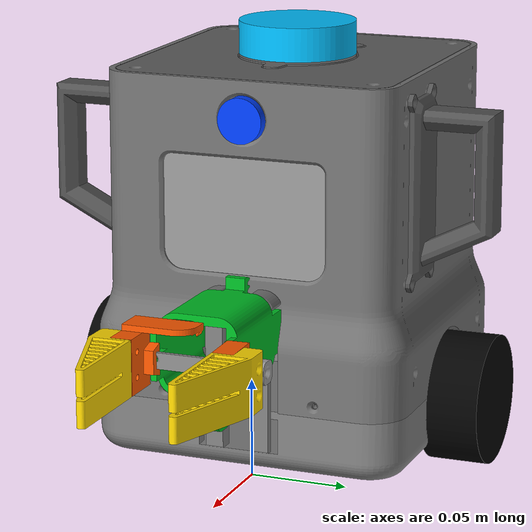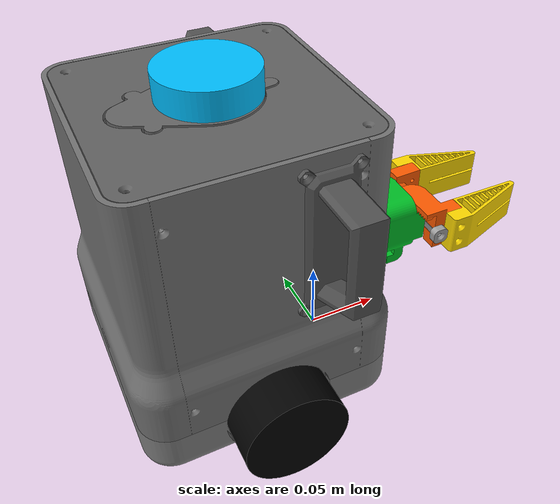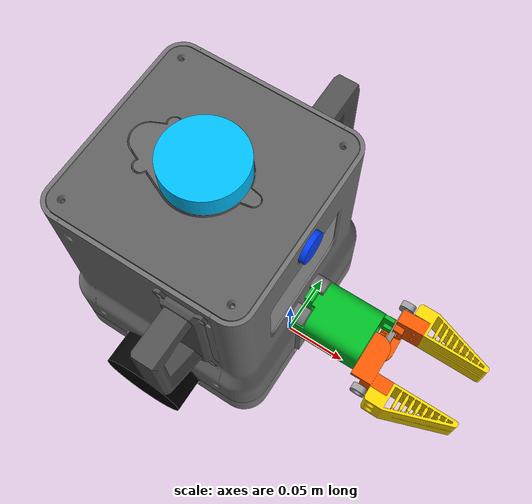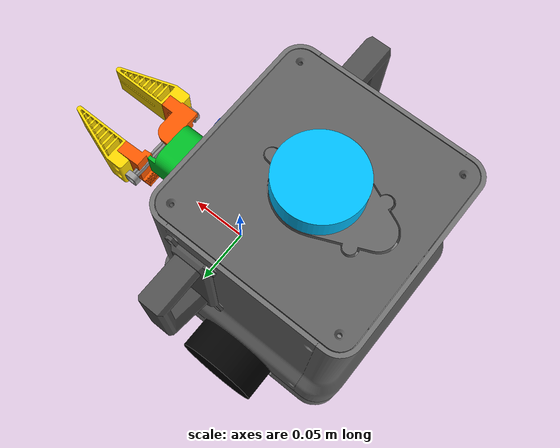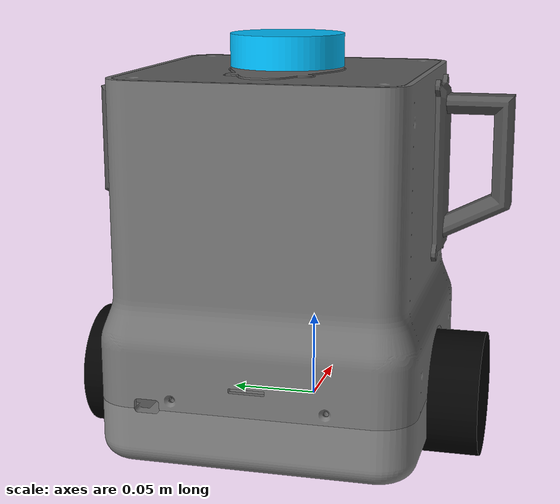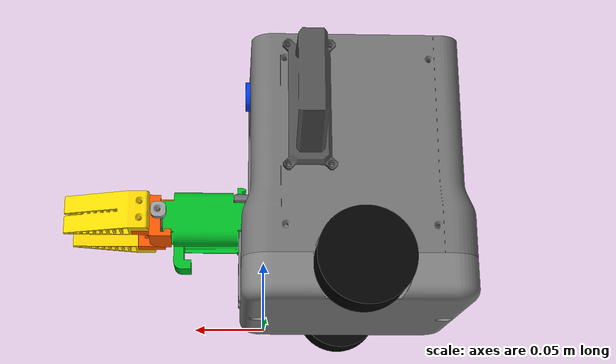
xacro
<?xml version="1.0"?>
<robot name="co_bot_2" xmlns:xacro="http://www.ros.org/wiki/xacro">

  <!-- Tunable dimensions/limits -->

  <xacro:property name="mesh_scale" value="0.001 0.001 0.001"/>
  <xacro:property name="mesh_rpy" value="1.5708 0 4.71239"/>

  <material name="body_gray">
    <color rgba="0.45 0.45 0.45 1.0"/>
  </material>

  <material name="sensor_blue">
    <color rgba="0.1 0.35 0.9 1.0"/>
  </material>

  <material name="wheel_black">
    <color rgba="0.02 0.02 0.02 1.0"/>
  </material>

  <material name="slide_green">
    <color rgba="0.1 0.65 0.25 1.0"/>
  </material>

  <material name="gripper_orange">
    <color rgba="0.95 0.45 0.05 1.0"/>
  </material>
  <!-- SolidWorks STEP is millimeter based. URDF uses meter, so 0.001 scale converts mm -> m. -->

  <xacro:property name="wheel_radius" value="0.033"/>
  <xacro:property name="wheel_width"  value="0.020"/>

  <xacro:property name="base_mass"          value="3.0"/>
  <xacro:property name="wheel_mass"         value="0.12"/>
  <xacro:property name="slide_mass"         value="0.5"/>
  <xacro:property name="gripper_mass"       value="0.15"/>
  <xacro:property name="hand_mass"          value="0.08"/>
  <xacro:property name="sensor_mass"        value="0.05"/>

  <!-- Change these numbers to tune prismatic travel range. Units are meters. -->
  <xacro:property name="slide_lower" value="0.000"/>
  <xacro:property name="slide_upper" value="0.053"/>

  <xacro:property name="left_gripper_lower"  value="0.000"/>
  <xacro:property name="left_gripper_upper"  value="0.015"/>
  <xacro:property name="right_gripper_lower" value="0.000"/>
  <xacro:property name="right_gripper_upper" value="0.015"/>

  <xacro:property name="base_visual_xyz" value="0.14888 0.11714 -0.00041"/>
  <xacro:property name="left_wheel_xyz" value="-0.06407 0.09245 0.03314"/>
  <xacro:property name="right_wheel_xyz" value="-0.06461 -0.09343 0.03299"/>
  <xacro:property name="camera_xyz" value="0.00762 -0.00047 0.18399"/>
  <xacro:property name="lidar_xyz" value="-0.06436 -0.00047 0.21331"/>
  <xacro:property name="slide_xyz" value="0.04300 -0.00047 0.07579"/>
  <xacro:property name="left_gripper_xyz" value="0.03945 0.01305 0.00321"/>
  <xacro:property name="right_gripper_xyz" value="0.03877 -0.01381 0.00747"/>
  <xacro:property name="left_hand_xyz" value="0.03290 0.01742 0.00150"/>
  <xacro:property name="right_hand_xyz" value="0.03291 -0.01699 -0.00150"/>

    <xacro:property name="camera_visual_xyz" value="0.14126 0.11761 -0.18440"/>

    <xacro:property name="lidar_visual_xyz" value="0.21324 0.11761 -0.21372"/>

    <xacro:property name="left_wheel_visual_xyz" value="0.21295 0.02469 -0.03355"/>

    <xacro:property name="right_wheel_visual_xyz" value="0.21349 0.21057 -0.03340"/>

    <xacro:property name="slide_visual_xyz" value="0.10588 0.11761 -0.07620"/>

    <xacro:property name="left_gripper_visual_xyz" value="0.06643 0.10456 -0.07941"/>

    <xacro:property name="right_gripper_visual_xyz" value="0.06711 0.13142 -0.08367"/>

    <xacro:property name="left_hand_visual_xyz" value="0.03353 0.08714 -0.08091"/>

    <xacro:property name="right_hand_visual_xyz" value="0.03420 0.14841 -0.08217"/>

  <!-- Small reusable macros     -->

  <xacro:macro name="simple_inertial" params="mass ixx iyy izz">
    <inertial>
      <origin xyz="0 0 0" rpy="0 0 0"/>
      <mass value="${mass}"/>
      <inertia ixx="${ixx}" ixy="0" ixz="0" iyy="${iyy}" iyz="0" izz="${izz}"/>
    </inertial>
  </xacro:macro>

  <xacro:macro name="mesh_visual_collision" params="mesh material rgba">
    <visual>
      <origin xyz="0 0 0" rpy="${mesh_rpy}"/>
      <geometry>
        <mesh filename="${mesh}" scale="${mesh_scale}"/>
      </geometry>
      <material name="${material}">
        <color rgba="${rgba}"/>
      </material>
    </visual>
    <collision>
      <origin xyz="0 0 0" rpy="${mesh_rpy}"/>
      <geometry>
        <mesh filename="${mesh}" scale="${mesh_scale}"/>
      </geometry>
    </collision>
  </xacro:macro>

  <xacro:macro name="mesh_visual_collision_at" params="mesh xyz material rgba">
    <visual>
      <origin xyz="${xyz}" rpy="${mesh_rpy}"/>
      <geometry>
        <mesh filename="${mesh}" scale="${mesh_scale}"/>
      </geometry>
      <material name="${material}">
        <color rgba="${rgba}"/>
      </material>
    </visual>
    <collision>
      <origin xyz="${xyz}" rpy="${mesh_rpy}"/>
      <geometry>
        <mesh filename="${mesh}" scale="${mesh_scale}"/>
      </geometry>
    </collision>
  </xacro:macro>

  <link name="base_footprint"/>

  <joint name="base_footprint_joint" type="fixed">
    <parent link="base_footprint"/>
    <child link="base_link"/>
    <origin xyz="0 0 0" rpy="0 0 0"/>
  </joint>

  <!-- Base/body fixed group     -->

  <link name="base_link">
    <xacro:simple_inertial mass="${base_mass}" ixx="0.03" iyy="0.03" izz="0.05"/>
    <xacro:mesh_visual_collision_at mesh="package://co_bot_2_description/meshes/body_b1.stl" xyz="${base_visual_xyz}" material="body_b1_gray" rgba="0.45 0.45 0.45 1.0"/>
    <xacro:mesh_visual_collision_at mesh="package://co_bot_2_description/meshes/body_b2.stl" xyz="${base_visual_xyz}" material="body_b2_gray" rgba="0.50 0.50 0.50 1.0"/>
    <xacro:mesh_visual_collision_at mesh="package://co_bot_2_description/meshes/body_part11.stl" xyz="${base_visual_xyz}" material="body_part11_gray" rgba="0.38 0.38 0.38 1.0"/>
    <xacro:mesh_visual_collision_at mesh="package://co_bot_2_description/meshes/body_part10.stl" xyz="${base_visual_xyz}" material="body_part10_gray" rgba="0.60 0.60 0.60 1.0"/>
    <xacro:mesh_visual_collision_at mesh="package://co_bot_2_description/meshes/body_part12_boss1.stl" xyz="${base_visual_xyz}" material="body_part12_gray" rgba="0.40 0.40 0.40 1.0"/>
    <xacro:mesh_visual_collision_at mesh="package://co_bot_2_description/meshes/body_part20_1.stl" xyz="${base_visual_xyz}" material="body_part20_1_gray" rgba="0.32 0.32 0.32 1.0"/>
    <xacro:mesh_visual_collision_at mesh="package://co_bot_2_description/meshes/body_part20_2.stl" xyz="${base_visual_xyz}" material="body_part20_2_gray" rgba="0.32 0.32 0.32 1.0"/>
  </link>

  <!-- Sensors                   -->

  <link name="camera_link">
    <xacro:simple_inertial mass="${sensor_mass}" ixx="0.0001" iyy="0.0001" izz="0.0001"/>
    <xacro:mesh_visual_collision_at mesh="package://co_bot_2_description/meshes/camera_part9.stl" xyz="${camera_visual_xyz}" material="camera_blue" rgba="0.0 0.25 1.0 1.0"/>
  </link>

  <joint name="base_to_camera_joint" type="fixed">
    <parent link="base_link"/>
    <child link="camera_link"/>
    <origin xyz="${camera_xyz}" rpy="0 0 0"/>
  </joint>

  <link name="camera_link_optical"/>

  <joint name="camera_optical_joint" type="fixed">
    <parent link="camera_link"/>
    <child link="camera_link_optical"/>
    <origin xyz="0 0 0" rpy="-1.5708 0 -1.5708"/>
  </joint>

    <link name="lidar_link">
    <xacro:simple_inertial mass="${sensor_mass}" ixx="0.0001" iyy="0.0001" izz="0.0001"/>
    <xacro:mesh_visual_collision_at mesh="package://co_bot_2_description/meshes/lidar_part12_boss3.stl" xyz="${lidar_visual_xyz}" material="lidar_cyan" rgba="0.0 0.75 1.0 1.0"/>
  </link>

  <joint name="base_to_lidar_joint" type="fixed">
    <parent link="base_link"/>
    <child link="lidar_link"/>
    <origin xyz="${lidar_xyz}" rpy="0 0 0"/>
  </joint>

  <link name="laser_frame"/>

  <joint name="lidar_to_laser_joint" type="fixed">
    <parent link="lidar_link"/>
    <child link="laser_frame"/>
    <origin xyz="0 0 0" rpy="0 0 0"/>
  </joint>

  <!-- Differential wheels       -->

  <link name="left_wheel_link">
    <xacro:simple_inertial mass="${wheel_mass}" ixx="0.0002" iyy="0.0002" izz="0.0002"/>
    <xacro:mesh_visual_collision_at mesh="package://co_bot_2_description/meshes/left_wheel_part2.stl" xyz="${left_wheel_visual_xyz}" material="left_wheel_black" rgba="0.01 0.01 0.01 1.0"/>
  </link>

  <joint name="left_wheel_joint" type="continuous">
    <parent link="base_link"/>
    <child link="left_wheel_link"/>
    <origin xyz="${left_wheel_xyz}" rpy="0 0 0"/>
    <axis xyz="0 1 0"/>
  </joint>

  <link name="right_wheel_link">
    <xacro:simple_inertial mass="${wheel_mass}" ixx="0.0002" iyy="0.0002" izz="0.0002"/>
    <xacro:mesh_visual_collision_at mesh="package://co_bot_2_description/meshes/right_wheel_part2.stl" xyz="${right_wheel_visual_xyz}" material="right_wheel_black" rgba="0.01 0.01 0.01 1.0"/>
  </link>

  <joint name="right_wheel_joint" type="continuous">
    <parent link="base_link"/>
    <child link="right_wheel_link"/>
    <origin xyz="${right_wheel_xyz}" rpy="0 0 0"/>
    <axis xyz="0 1 0"/>
  </joint>

  <!-- Vertical slide            -->

  <link name="slide_link">
    <xacro:simple_inertial mass="${slide_mass}" ixx="0.002" iyy="0.002" izz="0.002"/>
    <xacro:mesh_visual_collision_at mesh="package://co_bot_2_description/meshes/slide_b3.stl" xyz="${slide_visual_xyz}" material="slide_green" rgba="0.0 0.75 0.15 1.0"/>
    <xacro:mesh_visual_collision_at mesh="package://co_bot_2_description/meshes/body_part19.stl" xyz="${slide_visual_xyz}" material="body_part19_gray" rgba="0.55 0.55 0.55 1.0"/>
    <xacro:mesh_visual_collision_at mesh="package://co_bot_2_description/meshes/body_part24_1.stl" xyz="${slide_visual_xyz}" material="body_part24_1_gray" rgba="0.62 0.62 0.62 1.0"/>
    <xacro:mesh_visual_collision_at mesh="package://co_bot_2_description/meshes/body_part24_2.stl" xyz="${slide_visual_xyz}" material="body_part24_2_gray" rgba="0.62 0.62 0.62 1.0"/>
  </link>

  <joint name="base_to_slide_joint" type="prismatic">
    <parent link="base_link"/>
    <child link="slide_link"/>
    <origin xyz="${slide_xyz}" rpy="0 0 0"/>
    <axis xyz="0 0 -1"/>
    <limit lower="${slide_lower}" upper="${slide_upper}" effort="50" velocity="0.05"/>
  </joint>

  <!-- X-axis gripper slides     -->

  <link name="left_gripper_link">
    <xacro:simple_inertial mass="${gripper_mass}" ixx="0.0005" iyy="0.0005" izz="0.0005"/>
    <xacro:mesh_visual_collision_at mesh="package://co_bot_2_description/meshes/left_gripper_part17.stl" xyz="${left_gripper_visual_xyz}" material="left_gripper_orange" rgba="1.0 0.35 0.0 1.0"/>
  </link>

  <joint name="slide_to_left_gripper_joint" type="prismatic">
    <parent link="slide_link"/>
    <child link="left_gripper_link"/>
    <origin xyz="${left_gripper_xyz}" rpy="0 0 0"/>
    <axis xyz="0 -1 0"/>
    <limit lower="${left_gripper_lower}" upper="${left_gripper_upper}" effort="20" velocity="0.03"/>
  </joint>

  <link name="right_gripper_link">
    <xacro:simple_inertial mass="${gripper_mass}" ixx="0.0005" iyy="0.0005" izz="0.0005"/>
    <xacro:mesh_visual_collision_at mesh="package://co_bot_2_description/meshes/right_gripper_part17.stl" xyz="${right_gripper_visual_xyz}" material="right_gripper_orange" rgba="1.0 0.35 0.0 1.0"/>
  </link>

  <joint name="slide_to_right_gripper_joint" type="prismatic">
    <parent link="slide_link"/>
    <child link="right_gripper_link"/>
    <origin xyz="${right_gripper_xyz}" rpy="0 0 0"/>
    <axis xyz="0 1 0"/>
    <limit lower="${right_gripper_lower}" upper="${right_gripper_upper}" effort="20" velocity="0.03"/>
  </joint>

  <!-- Hands fixed to grippers   -->

  <link name="left_hand_link">
    <xacro:simple_inertial mass="${hand_mass}" ixx="0.0002" iyy="0.0002" izz="0.0002"/>
    <xacro:mesh_visual_collision_at mesh="package://co_bot_2_description/meshes/left_hand_part22.stl" xyz="${left_hand_visual_xyz}" material="left_hand_yellow" rgba="1.0 0.85 0.0 1.0"/>
  </link>

  <joint name="left_gripper_to_left_hand_joint" type="fixed">
    <parent link="left_gripper_link"/>
    <child link="left_hand_link"/>
    <origin xyz="${left_hand_xyz}" rpy="0 0 0"/>
  </joint>

  <link name="right_hand_link">
    <xacro:simple_inertial mass="${hand_mass}" ixx="0.0002" iyy="0.0002" izz="0.0002"/>
    <xacro:mesh_visual_collision_at mesh="package://co_bot_2_description/meshes/right_hand_part22.stl" xyz="${right_hand_visual_xyz}" material="right_hand_yellow" rgba="1.0 0.85 0.0 1.0"/>
  </link>

  <joint name="right_gripper_to_right_hand_joint" type="fixed">
    <parent link="right_gripper_link"/>
    <child link="right_hand_link"/>
    <origin xyz="${right_hand_xyz}" rpy="0 0 0"/>
  </joint>

</robot>
